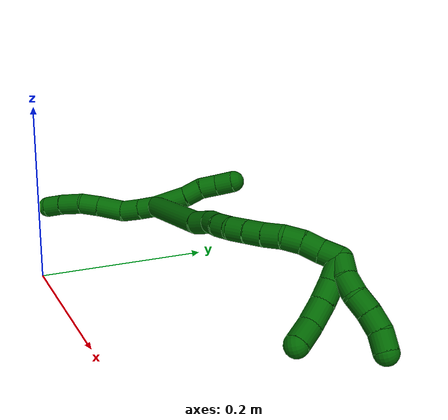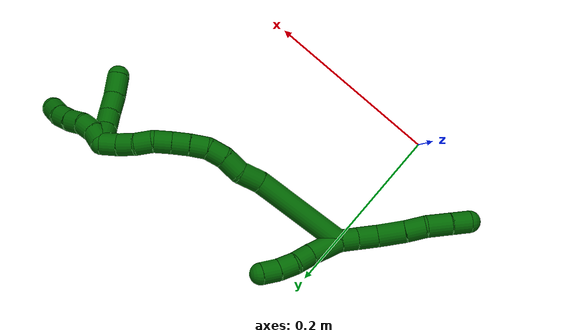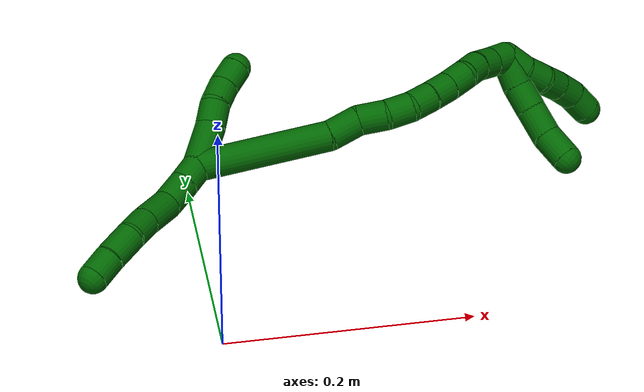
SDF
<sdf version="1.7">
 <world name="default">
  <model name="photoneo_s_sensor">
   <static>1</static>
   <pose>0 0 2 1.57079 1.57079 3.14159</pose>
   <link name="link">
    <inertial><mass>0.1</mass></inertial>
    <sensor name="sensor" type="depth">
     <update_rate>30</update_rate>
     <camera>
      <horizontal_fov>1.22</horizontal_fov>
      <image><width>1920</width><height>1200</height><format>B8G8R8</format></image>
      <clip><near>0.1</near><far>4</far></clip>
      <depth_camera><output>points</output></depth_camera>
     </camera>
     <plugin name="camera_plugin" filename="libgazebo_ros_depth_camera.so">
      <baseline>0.2</baseline>
      <alwaysOn>1</alwaysOn>
      <updateRate>0.0</updateRate>
      <cameraName>camera_ir</cameraName>
      <imageTopicName>/camera/color/image_raw</imageTopicName>
      <cameraInfoTopicName>/camera/color/camera_info</cameraInfoTopicName>
      <depthImageTopicName>/camera/depth/image_raw</depthImageTopicName>
      <depthImageCameraInfoTopicName>/camera/depth/camera_info</depthImageCameraInfoTopicName>
      <pointCloudTopicName>/camera/depth/points</pointCloudTopicName>
      <frameName>fr_optical</frameName>
      <pointCloudCutoff>0.1</pointCloudCutoff>
      <pointCloudCutoffMax>2.0</pointCloudCutoffMax>
      <distortionK1>0</distortionK1>
      <distortionK2>0</distortionK2>
      <distortionK3>0</distortionK3>
      <distortionT1>0</distortionT1>
      <distortionT2>0</distortionT2>
      <CxPrime>0</CxPrime>
      <Cx>0</Cx>
      <Cy>0</Cy>
      <focalLength>0</focalLength>
      <hackBaseline>0</hackBaseline>
     </plugin>
    </sensor>
   </link>
  </model>
  <model name="bin">
   <static>1</static>
   <link name="bottom">
    <collision name="collision-bottom">
     <pose>0 0 -0.01 0 -0 0</pose>
     <geometry><box><size>0.8 0.6 0.02</size></box></geometry>
     <surface>
      <friction><ode><mu>100</mu><mu2>100</mu2></ode></friction>
      <contact><collide_bitmask>65535</collide_bitmask></contact>
     </surface>
    </collision>
   </link>
   <link name="west_wall">
    <collision name="collision-west_wall">
     <pose>-0.41 0 0.1 0 -0 0</pose>
     <geometry><box><size>0.02 0.6 0.2</size></box></geometry>
     <surface>
      <friction><ode><mu>100</mu><mu2>100</mu2></ode></friction>
      <contact><collide_bitmask>65535</collide_bitmask></contact>
     </surface>
    </collision>
   </link>
   <link name="east_wall">
    <collision name="collision-east_wall">
     <pose>0.41 0 0.1 0 -0 0</pose>
     <geometry><box><size>0.02 0.6 0.2</size></box></geometry>
     <surface>
      <friction><ode><mu>100</mu><mu2>100</mu2></ode></friction>
      <contact><collide_bitmask>65535</collide_bitmask></contact>
     </surface>
    </collision>
   </link>
   <link name="south_wall">
    <collision name="collision-south_wall">
     <pose>0 -0.31 0.1 0 -0 0</pose>
     <geometry><box><size>0.8 0.02 0.2</size></box></geometry>
     <surface>
      <friction><ode><mu>100</mu><mu2>100</mu2></ode></friction>
      <contact><collide_bitmask>65535</collide_bitmask></contact>
     </surface>
    </collision>
   </link>
   <link name="north_wall">
    <collision name="collision-north_wall">
     <pose>0 0.31 0.1 0 -0 0</pose>
     <geometry><box><size>0.8 0.02 0.2</size></box></geometry>
     <surface>
      <friction><ode><mu>100</mu><mu2>100</mu2></ode></friction>
      <contact><collide_bitmask>65535</collide_bitmask></contact>
     </surface>
    </collision>
   </link>
  </model>
  <model name="6">
   <static>0</static>
   <link name="6">
    <collision name="collision-cylinder-e_1_2_8">
     <pose>0.000168 -0.000936 -0.010042 3.04861 0.016643 0.353976</pose>
     <geometry><cylinder><radius>0.0125</radius><length>0.020173</length></cylinder></geometry>
     <surface>
      <friction><ode><mu>1.16</mu><mu2>1.16</mu2><slip1>0</slip1><slip2>0</slip2></ode></friction>
      <contact><ode><kp>1e+06</kp><kd>1</kd><max_vel>0</max_vel><min_depth>0.001</min_depth></ode></contact>
     </surface>
    </collision>
    <visual name="visual-cylinder-e_1_2_8">
     <pose>0.000168 -0.000936 -0.010042 3.04861 0.016643 0.353976</pose>
     <geometry><cylinder><radius>0.0125</radius><length>0.020173</length></cylinder></geometry>
     <material><ambient>0 0.392157 0.003922 1</ambient></material>
    </visual>
    <collision name="collision-cylinder-e_2_8_9">
     <pose>0.000279 -0.003471 -0.032241 3.01085 -0.004647 -0.070953</pose>
     <geometry><cylinder><radius>0.0125</radius><length>0.024525</length></cylinder></geometry>
     <surface>
      <friction><ode><mu>1.16</mu><mu2>1.16</mu2><slip1>0</slip1><slip2>0</slip2></ode></friction>
      <contact><ode><kp>1e+06</kp><kd>1</kd><max_vel>0</max_vel><min_depth>0.001</min_depth></ode></contact>
     </surface>
    </collision>
    <visual name="visual-cylinder-e_2_8_9">
     <pose>0.000279 -0.003471 -0.032241 3.01085 -0.004647 -0.070953</pose>
     <geometry><cylinder><radius>0.0125</radius><length>0.024525</length></cylinder></geometry>
     <material><ambient>0 0.392157 0.003922 1</ambient></material>
    </visual>
    <collision name="collision-cylinder-e_3_9_10">
     <pose>-0.000772 -0.012277 -0.05878 2.67706 -0.061676 -0.259366</pose>
     <geometry><cylinder><radius>0.0125</radius><length>0.032233</length></cylinder></geometry>
     <surface>
      <friction><ode><mu>1.16</mu><mu2>1.16</mu2><slip1>0</slip1><slip2>0</slip2></ode></friction>
      <contact><ode><kp>1e+06</kp><kd>1</kd><max_vel>0</max_vel><min_depth>0.001</min_depth></ode></contact>
     </surface>
    </collision>
    <visual name="visual-cylinder-e_3_9_10">
     <pose>-0.000772 -0.012277 -0.05878 2.67706 -0.061676 -0.259366</pose>
     <geometry><cylinder><radius>0.0125</radius><length>0.032233</length></cylinder></geometry>
     <material><ambient>0 0.392157 0.003922 1</ambient></material>
    </visual>
    <collision name="collision-cylinder-e_4_10_11">
     <pose>-0.001552 -0.024526 -0.083528 2.68883 0.018439 0.080014</pose>
     <geometry><cylinder><radius>0.0125</radius><length>0.023061</length></cylinder></geometry>
     <surface>
      <friction><ode><mu>1.16</mu><mu2>1.16</mu2><slip1>0</slip1><slip2>0</slip2></ode></friction>
      <contact><ode><kp>1e+06</kp><kd>1</kd><max_vel>0</max_vel><min_depth>0.001</min_depth></ode></contact>
     </surface>
    </collision>
    <visual name="visual-cylinder-e_4_10_11">
     <pose>-0.001552 -0.024526 -0.083528 2.68883 0.018439 0.080014</pose>
     <geometry><cylinder><radius>0.0125</radius><length>0.023061</length></cylinder></geometry>
     <material><ambient>0 0.392157 0.003922 1</ambient></material>
    </visual>
    <collision name="collision-cylinder-e_5_11_12">
     <pose>-0.001864 -0.032302 -0.107541 2.94399 -0.03768 -0.375698</pose>
     <geometry><cylinder><radius>0.0125</radius><length>0.027855</length></cylinder></geometry>
     <surface>
      <friction><ode><mu>1.16</mu><mu2>1.16</mu2><slip1>0</slip1><slip2>0</slip2></ode></friction>
      <contact><ode><kp>1e+06</kp><kd>1</kd><max_vel>0</max_vel><min_depth>0.001</min_depth></ode></contact>
     </surface>
    </collision>
    <visual name="visual-cylinder-e_5_11_12">
     <pose>-0.001864 -0.032302 -0.107541 2.94399 -0.03768 -0.375698</pose>
     <geometry><cylinder><radius>0.0125</radius><length>0.027855</length></cylinder></geometry>
     <material><ambient>0 0.392157 0.003922 1</ambient></material>
    </visual>
    <collision name="collision-cylinder-e_6_12_6">
     <pose>-0.002486 -0.036188 -0.132204 3.03719 -0.008733 -0.166747</pose>
     <geometry><cylinder><radius>0.0125</radius><length>0.022154</length></cylinder></geometry>
     <surface>
      <friction><ode><mu>1.16</mu><mu2>1.16</mu2><slip1>0</slip1><slip2>0</slip2></ode></friction>
      <contact><ode><kp>1e+06</kp><kd>1</kd><max_vel>0</max_vel><min_depth>0.001</min_depth></ode></contact>
     </surface>
    </collision>
    <visual name="visual-cylinder-e_6_12_6">
     <pose>-0.002486 -0.036188 -0.132204 3.03719 -0.008733 -0.166747</pose>
     <geometry><cylinder><radius>0.0125</radius><length>0.022154</length></cylinder></geometry>
     <material><ambient>0 0.392157 0.003922 1</ambient></material>
    </visual>
    <collision name="collision-cylinder-e_1_2_13">
     <pose>-0.005967 0.001783 0.018017 -0.098658 -0.31834 0.01585</pose>
     <geometry><cylinder><radius>0.0125</radius><length>0.038126</length></cylinder></geometry>
     <surface>
      <friction><ode><mu>1.16</mu><mu2>1.16</mu2><slip1>0</slip1><slip2>0</slip2></ode></friction>
      <contact><ode><kp>1e+06</kp><kd>1</kd><max_vel>0</max_vel><min_depth>0.001</min_depth></ode></contact>
     </surface>
    </collision>
    <visual name="visual-cylinder-e_1_2_13">
     <pose>-0.005967 0.001783 0.018017 -0.098658 -0.31834 0.01585</pose>
     <geometry><cylinder><radius>0.0125</radius><length>0.038126</length></cylinder></geometry>
     <material><ambient>0 0.392157 0.003922 1</ambient></material>
    </visual>
    <collision name="collision-cylinder-e_2_13_14">
     <pose>-0.016066 0.003016 0.045646 0.057223 -0.405504 -0.011767</pose>
     <geometry><cylinder><radius>0.0125</radius><length>0.020953</length></cylinder></geometry>
     <surface>
      <friction><ode><mu>1.16</mu><mu2>1.16</mu2><slip1>0</slip1><slip2>0</slip2></ode></friction>
      <contact><ode><kp>1e+06</kp><kd>1</kd><max_vel>0</max_vel><min_depth>0.001</min_depth></ode></contact>
     </surface>
    </collision>
    <visual name="visual-cylinder-e_2_13_14">
     <pose>-0.016066 0.003016 0.045646 0.057223 -0.405504 -0.011767</pose>
     <geometry><cylinder><radius>0.0125</radius><length>0.020953</length></cylinder></geometry>
     <material><ambient>0 0.392157 0.003922 1</ambient></material>
    </visual>
    <collision name="collision-cylinder-e_3_14_15">
     <pose>-0.02248 0.004311 0.064901 -0.189081 -0.228319 0.021744</pose>
     <geometry><cylinder><radius>0.0125</radius><length>0.020161</length></cylinder></geometry>
     <surface>
      <friction><ode><mu>1.16</mu><mu2>1.16</mu2><slip1>0</slip1><slip2>0</slip2></ode></friction>
      <contact><ode><kp>1e+06</kp><kd>1</kd><max_vel>0</max_vel><min_depth>0.001</min_depth></ode></contact>
     </surface>
    </collision>
    <visual name="visual-cylinder-e_3_14_15">
     <pose>-0.02248 0.004311 0.064901 -0.189081 -0.228319 0.021744</pose>
     <geometry><cylinder><radius>0.0125</radius><length>0.020161</length></cylinder></geometry>
     <material><ambient>0 0.392157 0.003922 1</ambient></material>
    </visual>
    <collision name="collision-cylinder-e_4_15_5">
     <pose>-0.025696 0.007135 0.084836 -0.094821 -0.090109 0.004278</pose>
     <geometry><cylinder><radius>0.0125</radius><length>0.02076</length></cylinder></geometry>
     <surface>
      <friction><ode><mu>1.16</mu><mu2>1.16</mu2><slip1>0</slip1><slip2>0</slip2></ode></friction>
      <contact><ode><kp>1e+06</kp><kd>1</kd><max_vel>0</max_vel><min_depth>0.001</min_depth></ode></contact>
     </surface>
    </collision>
    <visual name="visual-cylinder-e_4_15_5">
     <pose>-0.025696 0.007135 0.084836 -0.094821 -0.090109 0.004278</pose>
     <geometry><cylinder><radius>0.0125</radius><length>0.02076</length></cylinder></geometry>
     <material><ambient>0 0.392157 0.003922 1</ambient></material>
    </visual>
    <collision name="collision-cylinder-e_1_2_16">
     <pose>0.036671 -0.003722 0.040413 0.091835 0.734794 0.035366</pose>
     <geometry><cylinder><radius>0.0125</radius><length>0.109394</length></cylinder></geometry>
     <surface>
      <friction><ode><mu>1.16</mu><mu2>1.16</mu2><slip1>0</slip1><slip2>0</slip2></ode></friction>
      <contact><ode><kp>1e+06</kp><kd>1</kd><max_vel>0</max_vel><min_depth>0.001</min_depth></ode></contact>
     </surface>
    </collision>
    <visual name="visual-cylinder-e_1_2_16">
     <pose>0.036671 -0.003722 0.040413 0.091835 0.734794 0.035366</pose>
     <geometry><cylinder><radius>0.0125</radius><length>0.109394</length></cylinder></geometry>
     <material><ambient>0 0.392157 0.003922 1</ambient></material>
    </visual>
    <collision name="collision-cylinder-e_2_16_17">
     <pose>0.079258 -0.009311 0.092332 0.160873 0.469637 0.038564</pose>
     <geometry><cylinder><radius>0.0125</radius><length>0.026145</length></cylinder></geometry>
     <surface>
      <friction><ode><mu>1.16</mu><mu2>1.16</mu2><slip1>0</slip1><slip2>0</slip2></ode></friction>
      <contact><ode><kp>1e+06</kp><kd>1</kd><max_vel>0</max_vel><min_depth>0.001</min_depth></ode></contact>
     </surface>
    </collision>
    <visual name="visual-cylinder-e_2_16_17">
     <pose>0.079258 -0.009311 0.092332 0.160873 0.469637 0.038564</pose>
     <geometry><cylinder><radius>0.0125</radius><length>0.026145</length></cylinder></geometry>
     <material><ambient>0 0.392157 0.003922 1</ambient></material>
    </visual>
    <collision name="collision-cylinder-e_3_17_18">
     <pose>0.093666 -0.013135 0.111684 0.244449 0.809881 0.105206</pose>
     <geometry><cylinder><radius>0.0125</radius><length>0.023451</length></cylinder></geometry>
     <surface>
      <friction><ode><mu>1.16</mu><mu2>1.16</mu2><slip1>0</slip1><slip2>0</slip2></ode></friction>
      <contact><ode><kp>1e+06</kp><kd>1</kd><max_vel>0</max_vel><min_depth>0.001</min_depth></ode></contact>
     </surface>
    </collision>
    <visual name="visual-cylinder-e_3_17_18">
     <pose>0.093666 -0.013135 0.111684 0.244449 0.809881 0.105206</pose>
     <geometry><cylinder><radius>0.0125</radius><length>0.023451</length></cylinder></geometry>
     <material><ambient>0 0.392157 0.003922 1</ambient></material>
    </visual>
    <collision name="collision-cylinder-e_4_18_19">
     <pose>0.108158 -0.015261 0.128047 0.019874 0.613627 0.006297</pose>
     <geometry><cylinder><radius>0.0125</radius><length>0.020841</length></cylinder></geometry>
     <surface>
      <friction><ode><mu>1.16</mu><mu2>1.16</mu2><slip1>0</slip1><slip2>0</slip2></ode></friction>
      <contact><ode><kp>1e+06</kp><kd>1</kd><max_vel>0</max_vel><min_depth>0.001</min_depth></ode></contact>
     </surface>
    </collision>
    <visual name="visual-cylinder-e_4_18_19">
     <pose>0.108158 -0.015261 0.128047 0.019874 0.613627 0.006297</pose>
     <geometry><cylinder><radius>0.0125</radius><length>0.020841</length></cylinder></geometry>
     <material><ambient>0 0.392157 0.003922 1</ambient></material>
    </visual>
    <collision name="collision-cylinder-e_5_19_20">
     <pose>0.117622 -0.013525 0.145818 -0.203088 0.351404 -0.036175</pose>
     <geometry><cylinder><radius>0.0125</radius><length>0.020126</length></cylinder></geometry>
     <surface>
      <friction><ode><mu>1.16</mu><mu2>1.16</mu2><slip1>0</slip1><slip2>0</slip2></ode></friction>
      <contact><ode><kp>1e+06</kp><kd>1</kd><max_vel>0</max_vel><min_depth>0.001</min_depth></ode></contact>
     </surface>
    </collision>
    <visual name="visual-cylinder-e_5_19_20">
     <pose>0.117622 -0.013525 0.145818 -0.203088 0.351404 -0.036175</pose>
     <geometry><cylinder><radius>0.0125</radius><length>0.020126</length></cylinder></geometry>
     <material><ambient>0 0.392157 0.003922 1</ambient></material>
    </visual>
    <collision name="collision-cylinder-e_6_20_21">
     <pose>0.123929 -0.009251 0.164363 -0.249627 0.288262 -0.036415</pose>
     <geometry><cylinder><radius>0.0125</radius><length>0.020001</length></cylinder></geometry>
     <surface>
      <friction><ode><mu>1.16</mu><mu2>1.16</mu2><slip1>0</slip1><slip2>0</slip2></ode></friction>
      <contact><ode><kp>1e+06</kp><kd>1</kd><max_vel>0</max_vel><min_depth>0.001</min_depth></ode></contact>
     </surface>
    </collision>
    <visual name="visual-cylinder-e_6_20_21">
     <pose>0.123929 -0.009251 0.164363 -0.249627 0.288262 -0.036415</pose>
     <geometry><cylinder><radius>0.0125</radius><length>0.020001</length></cylinder></geometry>
     <material><ambient>0 0.392157 0.003922 1</ambient></material>
    </visual>
    <collision name="collision-cylinder-e_7_21_22">
     <pose>0.129082 -0.00483 0.183169 -0.21244 0.233 -0.024954</pose>
     <geometry><cylinder><radius>0.0125</radius><length>0.020008</length></cylinder></geometry>
     <surface>
      <friction><ode><mu>1.16</mu><mu2>1.16</mu2><slip1>0</slip1><slip2>0</slip2></ode></friction>
      <contact><ode><kp>1e+06</kp><kd>1</kd><max_vel>0</max_vel><min_depth>0.001</min_depth></ode></contact>
     </surface>
    </collision>
    <visual name="visual-cylinder-e_7_21_22">
     <pose>0.129082 -0.00483 0.183169 -0.21244 0.233 -0.024954</pose>
     <geometry><cylinder><radius>0.0125</radius><length>0.020008</length></cylinder></geometry>
     <material><ambient>0 0.392157 0.003922 1</ambient></material>
    </visual>
    <collision name="collision-cylinder-e_8_22_23">
     <pose>0.132234 0.002172 0.201349 -0.51895 0.084228 -0.022371</pose>
     <geometry><cylinder><radius>0.0125</radius><length>0.020029</length></cylinder></geometry>
     <surface>
      <friction><ode><mu>1.16</mu><mu2>1.16</mu2><slip1>0</slip1><slip2>0</slip2></ode></friction>
      <contact><ode><kp>1e+06</kp><kd>1</kd><max_vel>0</max_vel><min_depth>0.001</min_depth></ode></contact>
     </surface>
    </collision>
    <visual name="visual-cylinder-e_8_22_23">
     <pose>0.132234 0.002172 0.201349 -0.51895 0.084228 -0.022371</pose>
     <geometry><cylinder><radius>0.0125</radius><length>0.020029</length></cylinder></geometry>
     <material><ambient>0 0.392157 0.003922 1</ambient></material>
    </visual>
    <collision name="collision-cylinder-e_9_23_24">
     <pose>0.135589 0.012904 0.217779 -0.640076 0.25392 -0.084562</pose>
     <geometry><cylinder><radius>0.0125</radius><length>0.020005</length></cylinder></geometry>
     <surface>
      <friction><ode><mu>1.16</mu><mu2>1.16</mu2><slip1>0</slip1><slip2>0</slip2></ode></friction>
      <contact><ode><kp>1e+06</kp><kd>1</kd><max_vel>0</max_vel><min_depth>0.001</min_depth></ode></contact>
     </surface>
    </collision>
    <visual name="visual-cylinder-e_9_23_24">
     <pose>0.135589 0.012904 0.217779 -0.640076 0.25392 -0.084562</pose>
     <geometry><cylinder><radius>0.0125</radius><length>0.020005</length></cylinder></geometry>
     <material><ambient>0 0.392157 0.003922 1</ambient></material>
    </visual>
    <collision name="collision-cylinder-e_10_24_1">
     <pose>0.141224 0.023152 0.233929 -0.489363 0.317487 -0.079902</pose>
     <geometry><cylinder><radius>0.0125</radius><length>0.02</length></cylinder></geometry>
     <surface>
      <friction><ode><mu>1.16</mu><mu2>1.16</mu2><slip1>0</slip1><slip2>0</slip2></ode></friction>
      <contact><ode><kp>1e+06</kp><kd>1</kd><max_vel>0</max_vel><min_depth>0.001</min_depth></ode></contact>
     </surface>
    </collision>
    <visual name="visual-cylinder-e_10_24_1">
     <pose>0.141224 0.023152 0.233929 -0.489363 0.317487 -0.079902</pose>
     <geometry><cylinder><radius>0.0125</radius><length>0.02</length></cylinder></geometry>
     <material><ambient>0 0.392157 0.003922 1</ambient></material>
    </visual>
    <collision name="collision-cylinder-e_1_1_25">
     <pose>0.153086 0.03224 0.243807 -1.25841 1.06359 -0.809233</pose>
     <geometry><cylinder><radius>0.0125</radius><length>0.02</length></cylinder></geometry>
     <surface>
      <friction><ode><mu>1.16</mu><mu2>1.16</mu2><slip1>0</slip1><slip2>0</slip2></ode></friction>
      <contact><ode><kp>1e+06</kp><kd>1</kd><max_vel>0</max_vel><min_depth>0.001</min_depth></ode></contact>
     </surface>
    </collision>
    <visual name="visual-cylinder-e_1_1_25">
     <pose>0.153086 0.03224 0.243807 -1.25841 1.06359 -0.809233</pose>
     <geometry><cylinder><radius>0.0125</radius><length>0.02</length></cylinder></geometry>
     <material><ambient>0 0.392157 0.003922 1</ambient></material>
    </visual>
    <collision name="collision-cylinder-e_2_25_26">
     <pose>0.169216 0.04242 0.249111 -0.969731 0.831378 -0.45696</pose>
     <geometry><cylinder><radius>0.0125</radius><length>0.02</length></cylinder></geometry>
     <surface>
      <friction><ode><mu>1.16</mu><mu2>1.16</mu2><slip1>0</slip1><slip2>0</slip2></ode></friction>
      <contact><ode><kp>1e+06</kp><kd>1</kd><max_vel>0</max_vel><min_depth>0.001</min_depth></ode></contact>
     </surface>
    </collision>
    <visual name="visual-cylinder-e_2_25_26">
     <pose>0.169216 0.04242 0.249111 -0.969731 0.831378 -0.45696</pose>
     <geometry><cylinder><radius>0.0125</radius><length>0.02</length></cylinder></geometry>
     <material><ambient>0 0.392157 0.003922 1</ambient></material>
    </visual>
    <collision name="collision-cylinder-e_3_26_27">
     <pose>0.181717 0.055262 0.257483 -1.01142 0.536582 -0.302149</pose>
     <geometry><cylinder><radius>0.0125</radius><length>0.02</length></cylinder></geometry>
     <surface>
      <friction><ode><mu>1.16</mu><mu2>1.16</mu2><slip1>0</slip1><slip2>0</slip2></ode></friction>
      <contact><ode><kp>1e+06</kp><kd>1</kd><max_vel>0</max_vel><min_depth>0.001</min_depth></ode></contact>
     </surface>
    </collision>
    <visual name="visual-cylinder-e_3_26_27">
     <pose>0.181717 0.055262 0.257483 -1.01142 0.536582 -0.302149</pose>
     <geometry><cylinder><radius>0.0125</radius><length>0.02</length></cylinder></geometry>
     <material><ambient>0 0.392157 0.003922 1</ambient></material>
    </visual>
    <collision name="collision-cylinder-e_4_27_28">
     <pose>0.193048 0.069513 0.265621 -1.09635 0.671161 -0.41965</pose>
     <geometry><cylinder><radius>0.0125</radius><length>0.02</length></cylinder></geometry>
     <surface>
      <friction><ode><mu>1.16</mu><mu2>1.16</mu2><slip1>0</slip1><slip2>0</slip2></ode></friction>
      <contact><ode><kp>1e+06</kp><kd>1</kd><max_vel>0</max_vel><min_depth>0.001</min_depth></ode></contact>
     </surface>
    </collision>
    <visual name="visual-cylinder-e_4_27_28">
     <pose>0.193048 0.069513 0.265621 -1.09635 0.671161 -0.41965</pose>
     <geometry><cylinder><radius>0.0125</radius><length>0.02</length></cylinder></geometry>
     <material><ambient>0 0.392157 0.003922 1</ambient></material>
    </visual>
    <collision name="collision-cylinder-e_5_28_4">
     <pose>0.20648 0.083314 0.27032 -1.40821 0.805655 -0.694521</pose>
     <geometry><cylinder><radius>0.0125</radius><length>0.02</length></cylinder></geometry>
     <surface>
      <friction><ode><mu>1.16</mu><mu2>1.16</mu2><slip1>0</slip1><slip2>0</slip2></ode></friction>
      <contact><ode><kp>1e+06</kp><kd>1</kd><max_vel>0</max_vel><min_depth>0.001</min_depth></ode></contact>
     </surface>
    </collision>
    <visual name="visual-cylinder-e_5_28_4">
     <pose>0.20648 0.083314 0.27032 -1.40821 0.805655 -0.694521</pose>
     <geometry><cylinder><radius>0.0125</radius><length>0.02</length></cylinder></geometry>
     <material><ambient>0 0.392157 0.003922 1</ambient></material>
    </visual>
    <collision name="collision-cylinder-e_1_1_29">
     <pose>0.154371 0.033393 0.236635 -2.3478 0.891231 -1.70112</pose>
     <geometry><cylinder><radius>0.0125</radius><length>0.025779</length></cylinder></geometry>
     <surface>
      <friction><ode><mu>1.16</mu><mu2>1.16</mu2><slip1>0</slip1><slip2>0</slip2></ode></friction>
      <contact><ode><kp>1e+06</kp><kd>1</kd><max_vel>0</max_vel><min_depth>0.001</min_depth></ode></contact>
     </surface>
    </collision>
    <visual name="visual-cylinder-e_1_1_29">
     <pose>0.154371 0.033393 0.236635 -2.3478 0.891231 -1.70112</pose>
     <geometry><cylinder><radius>0.0125</radius><length>0.025779</length></cylinder></geometry>
     <material><ambient>0 0.392157 0.003922 1</ambient></material>
    </visual>
    <collision name="collision-cylinder-e_2_29_30">
     <pose>0.174215 0.042305 0.226491 -2.52923 1.06359 -2.15548</pose>
     <geometry><cylinder><radius>0.0125</radius><length>0.022464</length></cylinder></geometry>
     <surface>
      <friction><ode><mu>1.16</mu><mu2>1.16</mu2><slip1>0</slip1><slip2>0</slip2></ode></friction>
      <contact><ode><kp>1e+06</kp><kd>1</kd><max_vel>0</max_vel><min_depth>0.001</min_depth></ode></contact>
     </surface>
    </collision>
    <visual name="visual-cylinder-e_2_29_30">
     <pose>0.174215 0.042305 0.226491 -2.52923 1.06359 -2.15548</pose>
     <geometry><cylinder><radius>0.0125</radius><length>0.022464</length></cylinder></geometry>
     <material><ambient>0 0.392157 0.003922 1</ambient></material>
    </visual>
    <collision name="collision-cylinder-e_3_30_31">
     <pose>0.195434 0.047958 0.216506 -2.71373 1.0817 -2.4474</pose>
     <geometry><cylinder><radius>0.0125</radius><length>0.02583</length></cylinder></geometry>
     <surface>
      <friction><ode><mu>1.16</mu><mu2>1.16</mu2><slip1>0</slip1><slip2>0</slip2></ode></friction>
      <contact><ode><kp>1e+06</kp><kd>1</kd><max_vel>0</max_vel><min_depth>0.001</min_depth></ode></contact>
     </surface>
    </collision>
    <visual name="visual-cylinder-e_3_30_31">
     <pose>0.195434 0.047958 0.216506 -2.71373 1.0817 -2.4474</pose>
     <geometry><cylinder><radius>0.0125</radius><length>0.02583</length></cylinder></geometry>
     <material><ambient>0 0.392157 0.003922 1</ambient></material>
    </visual>
    <collision name="collision-cylinder-e_4_31_3">
     <pose>0.219058 0.049984 0.206696 3.02727 1.23129 2.98015</pose>
     <geometry><cylinder><radius>0.0125</radius><length>0.025928</length></cylinder></geometry>
     <surface>
      <friction><ode><mu>1.16</mu><mu2>1.16</mu2><slip1>0</slip1><slip2>0</slip2></ode></friction>
      <contact><ode><kp>1e+06</kp><kd>1</kd><max_vel>0</max_vel><min_depth>0.001</min_depth></ode></contact>
     </surface>
    </collision>
    <visual name="visual-cylinder-e_4_31_3">
     <pose>0.219058 0.049984 0.206696 3.02727 1.23129 2.98015</pose>
     <geometry><cylinder><radius>0.0125</radius><length>0.025928</length></cylinder></geometry>
     <material><ambient>0 0.392157 0.003922 1</ambient></material>
    </visual>
    <collision name="collision-sphere-3">
     <pose>0.231282 0.049491 0.202407 0 -0 0</pose>
     <geometry><sphere><radius>0.0125</radius></sphere></geometry>
     <surface>
      <friction><ode><mu>1.16</mu><mu2>1.16</mu2><slip1>0</slip1><slip2>0</slip2></ode></friction>
      <contact><ode><kp>1e+06</kp><kd>1</kd><max_vel>0</max_vel><min_depth>0.001</min_depth></ode></contact>
     </surface>
    </collision>
    <visual name="visual-sphere-3">
     <pose>0.231282 0.049491 0.202407 0 -0 0</pose>
     <geometry><sphere><radius>0.0125</radius></sphere></geometry>
     <material><ambient>0 0.392157 0.003922 1</ambient></material>
    </visual>
    <collision name="collision-sphere-31">
     <pose>0.206835 0.050476 0.210985 0 -0 0</pose>
     <geometry><sphere><radius>0.0125</radius></sphere></geometry>
     <surface>
      <friction><ode><mu>1.16</mu><mu2>1.16</mu2><slip1>0</slip1><slip2>0</slip2></ode></friction>
      <contact><ode><kp>1e+06</kp><kd>1</kd><max_vel>0</max_vel><min_depth>0.001</min_depth></ode></contact>
     </surface>
    </collision>
    <visual name="visual-sphere-31">
     <pose>0.206835 0.050476 0.210985 0 -0 0</pose>
     <geometry><sphere><radius>0.0125</radius></sphere></geometry>
     <material><ambient>0 0.392157 0.003922 1</ambient></material>
    </visual>
    <collision name="collision-sphere-30">
     <pose>0.184033 0.045441 0.222027 0 -0 0</pose>
     <geometry><sphere><radius>0.0125</radius></sphere></geometry>
     <surface>
      <friction><ode><mu>1.16</mu><mu2>1.16</mu2><slip1>0</slip1><slip2>0</slip2></ode></friction>
      <contact><ode><kp>1e+06</kp><kd>1</kd><max_vel>0</max_vel><min_depth>0.001</min_depth></ode></contact>
     </surface>
    </collision>
    <visual name="visual-sphere-30">
     <pose>0.184033 0.045441 0.222027 0 -0 0</pose>
     <geometry><sphere><radius>0.0125</radius></sphere></geometry>
     <material><ambient>0 0.392157 0.003922 1</ambient></material>
    </visual>
    <collision name="collision-sphere-29">
     <pose>0.164397 0.039169 0.230956 0 -0 0</pose>
     <geometry><sphere><radius>0.0125</radius></sphere></geometry>
     <surface>
      <friction><ode><mu>1.16</mu><mu2>1.16</mu2><slip1>0</slip1><slip2>0</slip2></ode></friction>
      <contact><ode><kp>1e+06</kp><kd>1</kd><max_vel>0</max_vel><min_depth>0.001</min_depth></ode></contact>
     </surface>
    </collision>
    <visual name="visual-sphere-29">
     <pose>0.164397 0.039169 0.230956 0 -0 0</pose>
     <geometry><sphere><radius>0.0125</radius></sphere></geometry>
     <material><ambient>0 0.392157 0.003922 1</ambient></material>
    </visual>
    <collision name="collision-sphere-4">
     <pose>0.213692 0.090149 0.271441 0 -0 0</pose>
     <geometry><sphere><radius>0.0125</radius></sphere></geometry>
     <surface>
      <friction><ode><mu>1.16</mu><mu2>1.16</mu2><slip1>0</slip1><slip2>0</slip2></ode></friction>
      <contact><ode><kp>1e+06</kp><kd>1</kd><max_vel>0</max_vel><min_depth>0.001</min_depth></ode></contact>
     </surface>
    </collision>
    <visual name="visual-sphere-4">
     <pose>0.213692 0.090149 0.271441 0 -0 0</pose>
     <geometry><sphere><radius>0.0125</radius></sphere></geometry>
     <material><ambient>0 0.392157 0.003922 1</ambient></material>
    </visual>
    <collision name="collision-sphere-28">
     <pose>0.199267 0.076479 0.269199 0 -0 0</pose>
     <geometry><sphere><radius>0.0125</radius></sphere></geometry>
     <surface>
      <friction><ode><mu>1.16</mu><mu2>1.16</mu2><slip1>0</slip1><slip2>0</slip2></ode></friction>
      <contact><ode><kp>1e+06</kp><kd>1</kd><max_vel>0</max_vel><min_depth>0.001</min_depth></ode></contact>
     </surface>
    </collision>
    <visual name="visual-sphere-28">
     <pose>0.199267 0.076479 0.269199 0 -0 0</pose>
     <geometry><sphere><radius>0.0125</radius></sphere></geometry>
     <material><ambient>0 0.392157 0.003922 1</ambient></material>
    </visual>
    <collision name="collision-sphere-27">
     <pose>0.186829 0.062547 0.262043 0 -0 0</pose>
     <geometry><sphere><radius>0.0125</radius></sphere></geometry>
     <surface>
      <friction><ode><mu>1.16</mu><mu2>1.16</mu2><slip1>0</slip1><slip2>0</slip2></ode></friction>
      <contact><ode><kp>1e+06</kp><kd>1</kd><max_vel>0</max_vel><min_depth>0.001</min_depth></ode></contact>
     </surface>
    </collision>
    <visual name="visual-sphere-27">
     <pose>0.186829 0.062547 0.262043 0 -0 0</pose>
     <geometry><sphere><radius>0.0125</radius></sphere></geometry>
     <material><ambient>0 0.392157 0.003922 1</ambient></material>
    </visual>
    <collision name="collision-sphere-26">
     <pose>0.176605 0.047977 0.252922 0 -0 0</pose>
     <geometry><sphere><radius>0.0125</radius></sphere></geometry>
     <surface>
      <friction><ode><mu>1.16</mu><mu2>1.16</mu2><slip1>0</slip1><slip2>0</slip2></ode></friction>
      <contact><ode><kp>1e+06</kp><kd>1</kd><max_vel>0</max_vel><min_depth>0.001</min_depth></ode></contact>
     </surface>
    </collision>
    <visual name="visual-sphere-26">
     <pose>0.176605 0.047977 0.252922 0 -0 0</pose>
     <geometry><sphere><radius>0.0125</radius></sphere></geometry>
     <material><ambient>0 0.392157 0.003922 1</ambient></material>
    </visual>
    <collision name="collision-sphere-25">
     <pose>0.161827 0.036862 0.2453 0 -0 0</pose>
     <geometry><sphere><radius>0.0125</radius></sphere></geometry>
     <surface>
      <friction><ode><mu>1.16</mu><mu2>1.16</mu2><slip1>0</slip1><slip2>0</slip2></ode></friction>
      <contact><ode><kp>1e+06</kp><kd>1</kd><max_vel>0</max_vel><min_depth>0.001</min_depth></ode></contact>
     </surface>
    </collision>
    <visual name="visual-sphere-25">
     <pose>0.161827 0.036862 0.2453 0 -0 0</pose>
     <geometry><sphere><radius>0.0125</radius></sphere></geometry>
     <material><ambient>0 0.392157 0.003922 1</ambient></material>
    </visual>
    <collision name="collision-sphere-1">
     <pose>0.144345 0.027617 0.242315 0 -0 0</pose>
     <geometry><sphere><radius>0.0125</radius></sphere></geometry>
     <surface>
      <friction><ode><mu>1.16</mu><mu2>1.16</mu2><slip1>0</slip1><slip2>0</slip2></ode></friction>
      <contact><ode><kp>1e+06</kp><kd>1</kd><max_vel>0</max_vel><min_depth>0.001</min_depth></ode></contact>
     </surface>
    </collision>
    <visual name="visual-sphere-1">
     <pose>0.144345 0.027617 0.242315 0 -0 0</pose>
     <geometry><sphere><radius>0.0125</radius></sphere></geometry>
     <material><ambient>0 0.392157 0.003922 1</ambient></material>
    </visual>
    <collision name="collision-sphere-24">
     <pose>0.138102 0.018686 0.225544 0 -0 0</pose>
     <geometry><sphere><radius>0.0125</radius></sphere></geometry>
     <surface>
      <friction><ode><mu>1.16</mu><mu2>1.16</mu2><slip1>0</slip1><slip2>0</slip2></ode></friction>
      <contact><ode><kp>1e+06</kp><kd>1</kd><max_vel>0</max_vel><min_depth>0.001</min_depth></ode></contact>
     </surface>
    </collision>
    <visual name="visual-sphere-24">
     <pose>0.138102 0.018686 0.225544 0 -0 0</pose>
     <geometry><sphere><radius>0.0125</radius></sphere></geometry>
     <material><ambient>0 0.392157 0.003922 1</ambient></material>
    </visual>
    <collision name="collision-sphere-23">
     <pose>0.133077 0.007121 0.210014 0 -0 0</pose>
     <geometry><sphere><radius>0.0125</radius></sphere></geometry>
     <surface>
      <friction><ode><mu>1.16</mu><mu2>1.16</mu2><slip1>0</slip1><slip2>0</slip2></ode></friction>
      <contact><ode><kp>1e+06</kp><kd>1</kd><max_vel>0</max_vel><min_depth>0.001</min_depth></ode></contact>
     </surface>
    </collision>
    <visual name="visual-sphere-23">
     <pose>0.133077 0.007121 0.210014 0 -0 0</pose>
     <geometry><sphere><radius>0.0125</radius></sphere></geometry>
     <material><ambient>0 0.392157 0.003922 1</ambient></material>
    </visual>
    <collision name="collision-sphere-22">
     <pose>0.131392 -0.002777 0.192684 0 -0 0</pose>
     <geometry><sphere><radius>0.0125</radius></sphere></geometry>
     <surface>
      <friction><ode><mu>1.16</mu><mu2>1.16</mu2><slip1>0</slip1><slip2>0</slip2></ode></friction>
      <contact><ode><kp>1e+06</kp><kd>1</kd><max_vel>0</max_vel><min_depth>0.001</min_depth></ode></contact>
     </surface>
    </collision>
    <visual name="visual-sphere-22">
     <pose>0.131392 -0.002777 0.192684 0 -0 0</pose>
     <geometry><sphere><radius>0.0125</radius></sphere></geometry>
     <material><ambient>0 0.392157 0.003922 1</ambient></material>
    </visual>
    <collision name="collision-sphere-21">
     <pose>0.126772 -0.006882 0.173654 0 -0 0</pose>
     <geometry><sphere><radius>0.0125</radius></sphere></geometry>
     <surface>
      <friction><ode><mu>1.16</mu><mu2>1.16</mu2><slip1>0</slip1><slip2>0</slip2></ode></friction>
      <contact><ode><kp>1e+06</kp><kd>1</kd><max_vel>0</max_vel><min_depth>0.001</min_depth></ode></contact>
     </surface>
    </collision>
    <visual name="visual-sphere-21">
     <pose>0.126772 -0.006882 0.173654 0 -0 0</pose>
     <geometry><sphere><radius>0.0125</radius></sphere></geometry>
     <material><ambient>0 0.392157 0.003922 1</ambient></material>
    </visual>
    <collision name="collision-sphere-12">
     <pose>-0.002389 -0.035034 -0.121188 0 -0 0</pose>
     <geometry><sphere><radius>0.0125</radius></sphere></geometry>
     <surface>
      <friction><ode><mu>1.16</mu><mu2>1.16</mu2><slip1>0</slip1><slip2>0</slip2></ode></friction>
      <contact><ode><kp>1e+06</kp><kd>1</kd><max_vel>0</max_vel><min_depth>0.001</min_depth></ode></contact>
     </surface>
    </collision>
    <visual name="visual-sphere-12">
     <pose>-0.002389 -0.035034 -0.121188 0 -0 0</pose>
     <geometry><sphere><radius>0.0125</radius></sphere></geometry>
     <material><ambient>0 0.392157 0.003922 1</ambient></material>
    </visual>
    <collision name="collision-sphere-11">
     <pose>-0.00134 -0.02957 -0.093895 0 -0 0</pose>
     <geometry><sphere><radius>0.0125</radius></sphere></geometry>
     <surface>
      <friction><ode><mu>1.16</mu><mu2>1.16</mu2><slip1>0</slip1><slip2>0</slip2></ode></friction>
      <contact><ode><kp>1e+06</kp><kd>1</kd><max_vel>0</max_vel><min_depth>0.001</min_depth></ode></contact>
     </surface>
    </collision>
    <visual name="visual-sphere-11">
     <pose>-0.00134 -0.02957 -0.093895 0 -0 0</pose>
     <geometry><sphere><radius>0.0125</radius></sphere></geometry>
     <material><ambient>0 0.392157 0.003922 1</ambient></material>
    </visual>
    <collision name="collision-sphere-10">
     <pose>-0.001765 -0.019483 -0.073161 0 -0 0</pose>
     <geometry><sphere><radius>0.0125</radius></sphere></geometry>
     <surface>
      <friction><ode><mu>1.16</mu><mu2>1.16</mu2><slip1>0</slip1><slip2>0</slip2></ode></friction>
      <contact><ode><kp>1e+06</kp><kd>1</kd><max_vel>0</max_vel><min_depth>0.001</min_depth></ode></contact>
     </surface>
    </collision>
    <visual name="visual-sphere-10">
     <pose>-0.001765 -0.019483 -0.073161 0 -0 0</pose>
     <geometry><sphere><radius>0.0125</radius></sphere></geometry>
     <material><ambient>0 0.392157 0.003922 1</ambient></material>
    </visual>
    <collision name="collision-sphere-9">
     <pose>0.000222 -0.00507 -0.044398 0 -0 0</pose>
     <geometry><sphere><radius>0.0125</radius></sphere></geometry>
     <surface>
      <friction><ode><mu>1.16</mu><mu2>1.16</mu2><slip1>0</slip1><slip2>0</slip2></ode></friction>
      <contact><ode><kp>1e+06</kp><kd>1</kd><max_vel>0</max_vel><min_depth>0.001</min_depth></ode></contact>
     </surface>
    </collision>
    <visual name="visual-sphere-9">
     <pose>0.000222 -0.00507 -0.044398 0 -0 0</pose>
     <geometry><sphere><radius>0.0125</radius></sphere></geometry>
     <material><ambient>0 0.392157 0.003922 1</ambient></material>
    </visual>
    <collision name="collision-sphere-2">
     <geometry><sphere><radius>0.0125</radius></sphere></geometry>
     <surface>
      <friction><ode><mu>1.16</mu><mu2>1.16</mu2><slip1>0</slip1><slip2>0</slip2></ode></friction>
      <contact><ode><kp>1e+06</kp><kd>1</kd><max_vel>0</max_vel><min_depth>0.001</min_depth></ode></contact>
     </surface>
    </collision>
    <visual name="visual-sphere-2">
     <geometry><sphere><radius>0.0125</radius></sphere></geometry>
     <material><ambient>0 0.392157 0.003922 1</ambient></material>
    </visual>
    <collision name="collision-sphere-19">
     <pose>0.114158 -0.01543 0.136565 0 -0 0</pose>
     <geometry><sphere><radius>0.0125</radius></sphere></geometry>
     <surface>
      <friction><ode><mu>1.16</mu><mu2>1.16</mu2><slip1>0</slip1><slip2>0</slip2></ode></friction>
      <contact><ode><kp>1e+06</kp><kd>1</kd><max_vel>0</max_vel><min_depth>0.001</min_depth></ode></contact>
     </surface>
    </collision>
    <visual name="visual-sphere-19">
     <pose>0.114158 -0.01543 0.136565 0 -0 0</pose>
     <geometry><sphere><radius>0.0125</radius></sphere></geometry>
     <material><ambient>0 0.392157 0.003922 1</ambient></material>
    </visual>
    <collision name="collision-sphere-8">
     <pose>0.000336 -0.001873 -0.020083 0 -0 0</pose>
     <geometry><sphere><radius>0.0125</radius></sphere></geometry>
     <surface>
      <friction><ode><mu>1.16</mu><mu2>1.16</mu2><slip1>0</slip1><slip2>0</slip2></ode></friction>
      <contact><ode><kp>1e+06</kp><kd>1</kd><max_vel>0</max_vel><min_depth>0.001</min_depth></ode></contact>
     </surface>
    </collision>
    <visual name="visual-sphere-8">
     <pose>0.000336 -0.001873 -0.020083 0 -0 0</pose>
     <geometry><sphere><radius>0.0125</radius></sphere></geometry>
     <material><ambient>0 0.392157 0.003922 1</ambient></material>
    </visual>
    <collision name="collision-sphere-6">
     <pose>-0.002583 -0.037343 -0.14322 0 -0 0</pose>
     <geometry><sphere><radius>0.0125</radius></sphere></geometry>
     <surface>
      <friction><ode><mu>1.16</mu><mu2>1.16</mu2><slip1>0</slip1><slip2>0</slip2></ode></friction>
      <contact><ode><kp>1e+06</kp><kd>1</kd><max_vel>0</max_vel><min_depth>0.001</min_depth></ode></contact>
     </surface>
    </collision>
    <visual name="visual-sphere-6">
     <pose>-0.002583 -0.037343 -0.14322 0 -0 0</pose>
     <geometry><sphere><radius>0.0125</radius></sphere></geometry>
     <material><ambient>0 0.392157 0.003922 1</ambient></material>
    </visual>
    <collision name="collision-sphere-13">
     <pose>-0.011933 0.003567 0.036035 0 -0 0</pose>
     <geometry><sphere><radius>0.0125</radius></sphere></geometry>
     <surface>
      <friction><ode><mu>1.16</mu><mu2>1.16</mu2><slip1>0</slip1><slip2>0</slip2></ode></friction>
      <contact><ode><kp>1e+06</kp><kd>1</kd><max_vel>0</max_vel><min_depth>0.001</min_depth></ode></contact>
     </surface>
    </collision>
    <visual name="visual-sphere-13">
     <pose>-0.011933 0.003567 0.036035 0 -0 0</pose>
     <geometry><sphere><radius>0.0125</radius></sphere></geometry>
     <material><ambient>0 0.392157 0.003922 1</ambient></material>
    </visual>
    <collision name="collision-sphere-14">
     <pose>-0.020199 0.002466 0.055257 0 -0 0</pose>
     <geometry><sphere><radius>0.0125</radius></sphere></geometry>
     <surface>
      <friction><ode><mu>1.16</mu><mu2>1.16</mu2><slip1>0</slip1><slip2>0</slip2></ode></friction>
      <contact><ode><kp>1e+06</kp><kd>1</kd><max_vel>0</max_vel><min_depth>0.001</min_depth></ode></contact>
     </surface>
    </collision>
    <visual name="visual-sphere-14">
     <pose>-0.020199 0.002466 0.055257 0 -0 0</pose>
     <geometry><sphere><radius>0.0125</radius></sphere></geometry>
     <material><ambient>0 0.392157 0.003922 1</ambient></material>
    </visual>
    <collision name="collision-sphere-15">
     <pose>-0.024762 0.006157 0.074545 0 -0 0</pose>
     <geometry><sphere><radius>0.0125</radius></sphere></geometry>
     <surface>
      <friction><ode><mu>1.16</mu><mu2>1.16</mu2><slip1>0</slip1><slip2>0</slip2></ode></friction>
      <contact><ode><kp>1e+06</kp><kd>1</kd><max_vel>0</max_vel><min_depth>0.001</min_depth></ode></contact>
     </surface>
    </collision>
    <visual name="visual-sphere-15">
     <pose>-0.024762 0.006157 0.074545 0 -0 0</pose>
     <geometry><sphere><radius>0.0125</radius></sphere></geometry>
     <material><ambient>0 0.392157 0.003922 1</ambient></material>
    </visual>
    <collision name="collision-sphere-5">
     <pose>-0.02663 0.008114 0.095127 0 -0 0</pose>
     <geometry><sphere><radius>0.0125</radius></sphere></geometry>
     <surface>
      <friction><ode><mu>1.16</mu><mu2>1.16</mu2><slip1>0</slip1><slip2>0</slip2></ode></friction>
      <contact><ode><kp>1e+06</kp><kd>1</kd><max_vel>0</max_vel><min_depth>0.001</min_depth></ode></contact>
     </surface>
    </collision>
    <visual name="visual-sphere-5">
     <pose>-0.02663 0.008114 0.095127 0 -0 0</pose>
     <geometry><sphere><radius>0.0125</radius></sphere></geometry>
     <material><ambient>0 0.392157 0.003922 1</ambient></material>
    </visual>
    <collision name="collision-sphere-16">
     <pose>0.073342 -0.007444 0.080825 0 -0 0</pose>
     <geometry><sphere><radius>0.0125</radius></sphere></geometry>
     <surface>
      <friction><ode><mu>1.16</mu><mu2>1.16</mu2><slip1>0</slip1><slip2>0</slip2></ode></friction>
      <contact><ode><kp>1e+06</kp><kd>1</kd><max_vel>0</max_vel><min_depth>0.001</min_depth></ode></contact>
     </surface>
    </collision>
    <visual name="visual-sphere-16">
     <pose>0.073342 -0.007444 0.080825 0 -0 0</pose>
     <geometry><sphere><radius>0.0125</radius></sphere></geometry>
     <material><ambient>0 0.392157 0.003922 1</ambient></material>
    </visual>
    <collision name="collision-sphere-17">
     <pose>0.085174 -0.011178 0.103839 0 -0 0</pose>
     <geometry><sphere><radius>0.0125</radius></sphere></geometry>
     <surface>
      <friction><ode><mu>1.16</mu><mu2>1.16</mu2><slip1>0</slip1><slip2>0</slip2></ode></friction>
      <contact><ode><kp>1e+06</kp><kd>1</kd><max_vel>0</max_vel><min_depth>0.001</min_depth></ode></contact>
     </surface>
    </collision>
    <visual name="visual-sphere-17">
     <pose>0.085174 -0.011178 0.103839 0 -0 0</pose>
     <geometry><sphere><radius>0.0125</radius></sphere></geometry>
     <material><ambient>0 0.392157 0.003922 1</ambient></material>
    </visual>
    <collision name="collision-sphere-18">
     <pose>0.102157 -0.015092 0.119529 0 -0 0</pose>
     <geometry><sphere><radius>0.0125</radius></sphere></geometry>
     <surface>
      <friction><ode><mu>1.16</mu><mu2>1.16</mu2><slip1>0</slip1><slip2>0</slip2></ode></friction>
      <contact><ode><kp>1e+06</kp><kd>1</kd><max_vel>0</max_vel><min_depth>0.001</min_depth></ode></contact>
     </surface>
    </collision>
    <visual name="visual-sphere-18">
     <pose>0.102157 -0.015092 0.119529 0 -0 0</pose>
     <geometry><sphere><radius>0.0125</radius></sphere></geometry>
     <material><ambient>0 0.392157 0.003922 1</ambient></material>
    </visual>
    <collision name="collision-sphere-20">
     <pose>0.121086 -0.011619 0.155072 0 -0 0</pose>
     <geometry><sphere><radius>0.0125</radius></sphere></geometry>
     <surface>
      <friction><ode><mu>1.16</mu><mu2>1.16</mu2><slip1>0</slip1><slip2>0</slip2></ode></friction>
      <contact><ode><kp>1e+06</kp><kd>1</kd><max_vel>0</max_vel><min_depth>0.001</min_depth></ode></contact>
     </surface>
    </collision>
    <visual name="visual-sphere-20">
     <pose>0.121086 -0.011619 0.155072 0 -0 0</pose>
     <geometry><sphere><radius>0.0125</radius></sphere></geometry>
     <material><ambient>0 0.392157 0.003922 1</ambient></material>
    </visual>
    <inertial>
     <pose>0.081509 0.008713 0.102558 0 -0 0</pose>
     <mass>0.75</mass>
     <inertia><ixx>0.00014</ixx><ixy>0</ixy><ixz>0</ixz><iyy>0.00014</iyy><iyz>0</iyz><izz>-7.5e-05</izz></inertia>
    </inertial>
   </link>
   <pose>0.001395 0.142518 0.068446 -1.20017 0.309841 -0.671079</pose>
  </model>
 </world>
</sdf>
